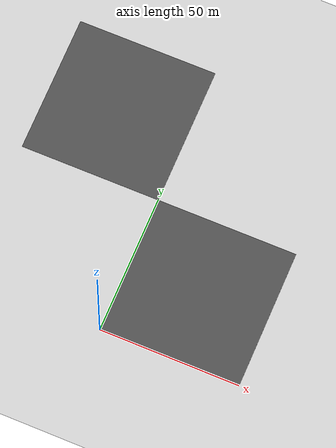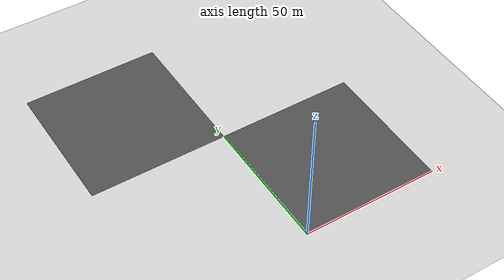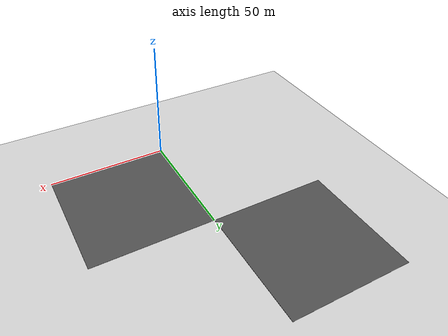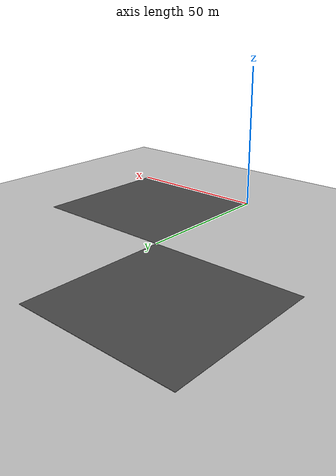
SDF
<sdf version="1.7">
 <world name="default">
  <model name="ground_plane">
   <static>1</static>
   <link name="link">
    <collision name="collision">
     <geometry><plane><normal>0 0 1</normal><size>100 100</size></plane></geometry>
     <surface>
      <contact><collide_bitmask>65535</collide_bitmask></contact>
      <friction><ode><mu>100</mu><mu2>50</mu2></ode></friction>
     </surface>
    </collision>
    <visual name="visual">
     <cast_shadows>0</cast_shadows>
     <geometry><plane><normal>0 0 1</normal><size>100 100</size></plane></geometry>
     <material>
      <script><uri>file://media/materials/scripts/gazebo.material</uri><name>Gazebo/Grey</name></script>
     </material>
    </visual>
   </link>
  </model>
  <model name="asphalt_plane">
   <link name="link">
    <inertial>
     <mass>1</mass>
     <inertia><ixx>1</ixx><ixy>0</ixy><ixz>0</ixz><iyy>1</iyy><iyz>0</iyz><izz>1</izz></inertia>
    </inertial>
    <visual name="visual">
     <cast_shadows>0</cast_shadows>
     <geometry><box><size>50 50 0.1</size></box></geometry>
     <material>
      <script>
       <uri>model://asphalt_plane/materials/scripts</uri>
       <uri>model://asphalt_plane/materials/textures</uri>
       <name>vrc/asphalt</name>
      </script>
      <shader type="pixel"><normal_map>__default__</normal_map></shader>
      <ambient>0.5 0.5 0.5 1</ambient>
      <diffuse>0.5 0.5 0.5 1</diffuse>
      <specular>0.2 0.2 0.2 1</specular>
      <emissive>0 0 0 1</emissive>
     </material>
    </visual>
    <collision name="collision">
     <geometry><box><size>50 50 0.1</size></box></geometry>
     <surface>
      <friction>
       <ode><mu>1</mu><mu2>1</mu2><fdir1>0 0 0</fdir1><slip1>0</slip1><slip2>0</slip2></ode>
       <torsional>
        <coefficient>1</coefficient>
        <patch_radius>0</patch_radius>
        <surface_radius>0</surface_radius>
        <use_patch_radius>1</use_patch_radius>
        <ode><slip>0</slip></ode>
       </torsional>
      </friction>
      <bounce><restitution_coefficient>0</restitution_coefficient><threshold>1e+06</threshold></bounce>
      <contact>
       <collide_without_contact>0</collide_without_contact>
       <collide_without_contact_bitmask>1</collide_without_contact_bitmask>
       <collide_bitmask>1</collide_bitmask>
       <ode>
        <soft_cfm>0</soft_cfm>
        <soft_erp>0.2</soft_erp>
        <kp>1e+13</kp>
        <kd>1</kd>
        <max_vel>0.01</max_vel>
        <min_depth>0</min_depth>
       </ode>
       <bullet>
        <split_impulse>1</split_impulse>
        <split_impulse_penetration_threshold>-0.01</split_impulse_penetration_threshold>
        <soft_cfm>0</soft_cfm>
        <soft_erp>0.2</soft_erp>
        <kp>1e+13</kp>
        <kd>1</kd>
       </bullet>
      </contact>
     </surface>
    </collision>
   </link>
   <static>1</static>
   <pose>25 25 0 0 -0 0</pose>
  </model>
  <model name="asphalt_plane_5">
   <link name="link">
    <inertial>
     <mass>1</mass>
     <inertia><ixx>1</ixx><ixy>0</ixy><ixz>0</ixz><iyy>1</iyy><iyz>0</iyz><izz>1</izz></inertia>
    </inertial>
    <visual name="visual">
     <cast_shadows>0</cast_shadows>
     <geometry><box><size>50 50 0.1</size></box></geometry>
     <material>
      <script>
       <uri>model://asphalt_plane/materials/scripts</uri>
       <uri>model://asphalt_plane/materials/textures</uri>
       <name>vrc/asphalt</name>
      </script>
      <shader type="pixel"><normal_map>__default__</normal_map></shader>
      <ambient>0.5 0.5 0.5 1</ambient>
      <diffuse>0.5 0.5 0.5 1</diffuse>
      <specular>0.2 0.2 0.2 1</specular>
      <emissive>0 0 0 1</emissive>
     </material>
    </visual>
    <collision name="collision">
     <geometry><box><size>50 50 0.1</size></box></geometry>
     <surface>
      <friction>
       <ode><mu>1</mu><mu2>1</mu2><fdir1>0 0 0</fdir1><slip1>0</slip1><slip2>0</slip2></ode>
       <torsional>
        <coefficient>1</coefficient>
        <patch_radius>0</patch_radius>
        <surface_radius>0</surface_radius>
        <use_patch_radius>1</use_patch_radius>
        <ode><slip>0</slip></ode>
       </torsional>
      </friction>
      <bounce><restitution_coefficient>0</restitution_coefficient><threshold>1e+06</threshold></bounce>
      <contact>
       <collide_without_contact>0</collide_without_contact>
       <collide_without_contact_bitmask>1</collide_without_contact_bitmask>
       <collide_bitmask>1</collide_bitmask>
       <ode>
        <soft_cfm>0</soft_cfm>
        <soft_erp>0.2</soft_erp>
        <kp>1e+13</kp>
        <kd>1</kd>
        <max_vel>0.01</max_vel>
        <min_depth>0</min_depth>
       </ode>
       <bullet>
        <split_impulse>1</split_impulse>
        <split_impulse_penetration_threshold>-0.01</split_impulse_penetration_threshold>
        <soft_cfm>0</soft_cfm>
        <soft_erp>0.2</soft_erp>
        <kp>1e+13</kp>
        <kd>1</kd>
       </bullet>
      </contact>
     </surface>
    </collision>
   </link>
   <static>1</static>
   <pose>-25 75 0 0 -0 0</pose>
  </model>
 </world>
</sdf>
